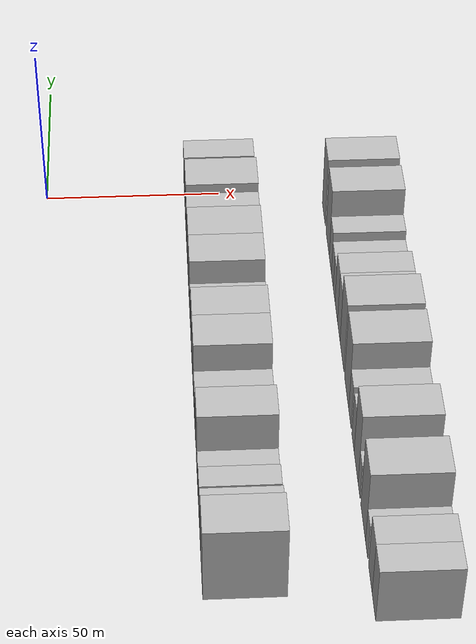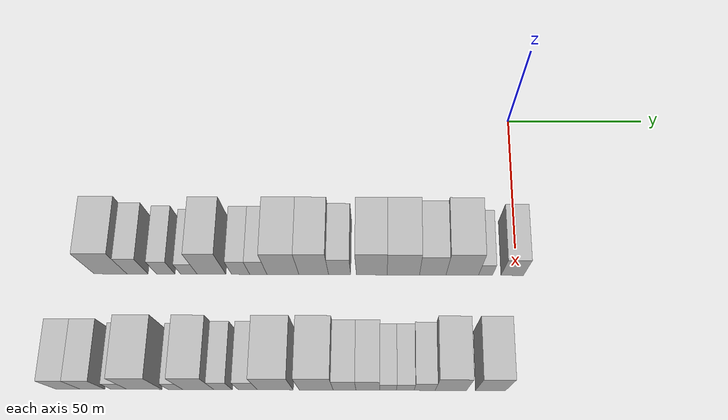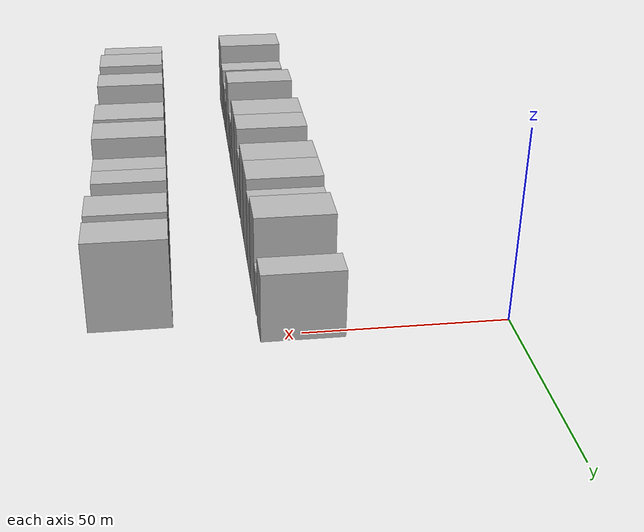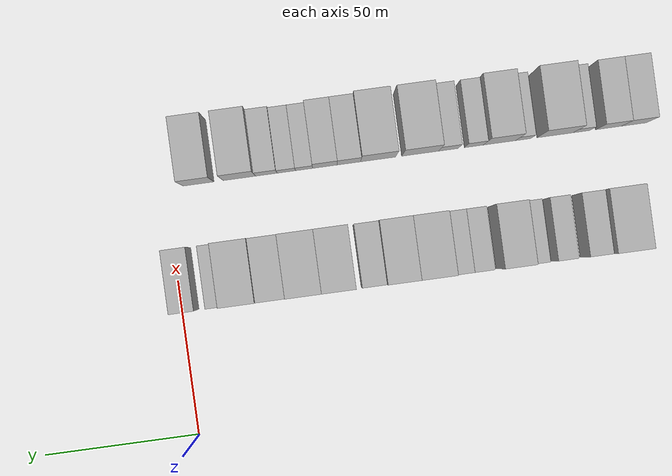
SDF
<sdf version="1.6">
 <world name="default">
  <model name="building_18">
   <static>1</static>
   <pose>50.0000 -142.4200 0 0.000000 0.000000 0.000000</pose>
   <link name="link">
    <pose>0 0 12.00 0 0 0</pose>
    <collision name="collision"><geometry><box><size>20.0000 11.5396 24.0000</size></box></geometry></collision>
    <visual name="visual">
     <cast_shadows>0</cast_shadows>
     <geometry><box><size>20.0000 11.5396 24.0000</size></box></geometry>
     <material>
      <script>
       <uri>model://HANNAS_wall/materials/scripts</uri>
       <uri>model://HANNAS_wall/materials/textures</uri>
       <name>vrc/HANNAS_wall</name>
      </script>
     </material>
    </visual>
   </link>
  </model>
  <model name="building_19">
   <static>1</static>
   <pose>50.0000 -132.9575 0 0.000000 0.000000 0.000000</pose>
   <link name="link">
    <pose>0 0 9.00 0 0 0</pose>
    <collision name="collision"><geometry><box><size>20.0000 7.3854 18.0000</size></box></geometry></collision>
    <visual name="visual">
     <cast_shadows>0</cast_shadows>
     <geometry><box><size>20.0000 7.3854 18.0000</size></box></geometry>
     <material>
      <script>
       <uri>model://HANNAS_wall/materials/scripts</uri>
       <uri>model://HANNAS_wall/materials/textures</uri>
       <name>vrc/HANNAS_wall</name>
      </script>
     </material>
    </visual>
   </link>
  </model>
  <model name="building_20">
   <static>1</static>
   <pose>50.0000 -123.0354 0 0.000000 0.000000 0.000000</pose>
   <link name="link">
    <pose>0 0 7.50 0 0 0</pose>
    <collision name="collision"><geometry><box><size>20.0000 6.4587 15.0000</size></box></geometry></collision>
    <visual name="visual">
     <cast_shadows>0</cast_shadows>
     <geometry><box><size>20.0000 6.4587 15.0000</size></box></geometry>
     <material>
      <script>
       <uri>model://HANNAS_wall/materials/scripts</uri>
       <uri>model://HANNAS_wall/materials/textures</uri>
       <name>vrc/HANNAS_wall</name>
      </script>
     </material>
    </visual>
   </link>
  </model>
  <model name="building_21">
   <static>1</static>
   <pose>50.0000 -114.9029 0 0.000000 0.000000 0.000000</pose>
   <link name="link">
    <pose>0 0 6.00 0 0 0</pose>
    <collision name="collision"><geometry><box><size>20.0000 5.8064 12.0000</size></box></geometry></collision>
    <visual name="visual">
     <cast_shadows>0</cast_shadows>
     <geometry><box><size>20.0000 5.8064 12.0000</size></box></geometry>
     <material>
      <script>
       <uri>model://HANNAS_wall/materials/scripts</uri>
       <uri>model://HANNAS_wall/materials/textures</uri>
       <name>vrc/HANNAS_wall</name>
      </script>
     </material>
    </visual>
   </link>
  </model>
  <model name="building_22">
   <static>1</static>
   <pose>50.0000 -106.9604 0 0.000000 0.000000 0.000000</pose>
   <link name="link">
    <pose>0 0 12.00 0 0 0</pose>
    <collision name="collision"><geometry><box><size>20.0000 10.0785 24.0000</size></box></geometry></collision>
    <visual name="visual">
     <cast_shadows>0</cast_shadows>
     <geometry><box><size>20.0000 10.0785 24.0000</size></box></geometry>
     <material>
      <script>
       <uri>model://HANNAS_wall/materials/scripts</uri>
       <uri>model://HANNAS_wall/materials/textures</uri>
       <name>vrc/HANNAS_wall</name>
      </script>
     </material>
    </visual>
   </link>
  </model>
  <model name="building_23">
   <static>1</static>
   <pose>50.0000 -96.7455 0 0.000000 0.000000 0.000000</pose>
   <link name="link">
    <pose>0 0 7.50 0 0 0</pose>
    <collision name="collision"><geometry><box><size>20.0000 6.3514 15.0000</size></box></geometry></collision>
    <visual name="visual">
     <cast_shadows>0</cast_shadows>
     <geometry><box><size>20.0000 6.3514 15.0000</size></box></geometry>
     <material>
      <script>
       <uri>model://HANNAS_wall/materials/scripts</uri>
       <uri>model://HANNAS_wall/materials/textures</uri>
       <name>vrc/HANNAS_wall</name>
      </script>
     </material>
    </visual>
   </link>
  </model>
  <model name="building_24">
   <static>1</static>
   <pose>50.0000 -90.5376 0 0.000000 0.000000 0.000000</pose>
   <link name="link">
    <pose>0 0 7.50 0 0 0</pose>
    <collision name="collision"><geometry><box><size>20.0000 6.0643 15.0000</size></box></geometry></collision>
    <visual name="visual">
     <cast_shadows>0</cast_shadows>
     <geometry><box><size>20.0000 6.0643 15.0000</size></box></geometry>
     <material>
      <script>
       <uri>model://HANNAS_wall/materials/scripts</uri>
       <uri>model://HANNAS_wall/materials/textures</uri>
       <name>vrc/HANNAS_wall</name>
      </script>
     </material>
    </visual>
   </link>
  </model>
  <model name="building_25">
   <static>1</static>
   <pose>50.0000 -81.9061 0 0.000000 0.000000 0.000000</pose>
   <link name="link">
    <pose>0 0 12.00 0 0 0</pose>
    <collision name="collision"><geometry><box><size>20.0000 11.1988 24.0000</size></box></geometry></collision>
    <visual name="visual">
     <cast_shadows>0</cast_shadows>
     <geometry><box><size>20.0000 11.1988 24.0000</size></box></geometry>
     <material>
      <script>
       <uri>model://HANNAS_wall/materials/scripts</uri>
       <uri>model://HANNAS_wall/materials/textures</uri>
       <name>vrc/HANNAS_wall</name>
      </script>
     </material>
    </visual>
   </link>
  </model>
  <model name="building_26">
   <static>1</static>
   <pose>50.0000 -71.0972 0 0.000000 0.000000 0.000000</pose>
   <link name="link">
    <pose>0 0 12.00 0 0 0</pose>
    <collision name="collision"><geometry><box><size>20.0000 10.4188 24.0000</size></box></geometry></collision>
    <visual name="visual">
     <cast_shadows>0</cast_shadows>
     <geometry><box><size>20.0000 10.4188 24.0000</size></box></geometry>
     <material>
      <script>
       <uri>model://HANNAS_wall/materials/scripts</uri>
       <uri>model://HANNAS_wall/materials/textures</uri>
       <name>vrc/HANNAS_wall</name>
      </script>
     </material>
    </visual>
   </link>
  </model>
  <model name="building_27">
   <static>1</static>
   <pose>50.0000 -62.0028 0 0.000000 0.000000 0.000000</pose>
   <link name="link">
    <pose>0 0 9.00 0 0 0</pose>
    <collision name="collision"><geometry><box><size>20.0000 7.7700 18.0000</size></box></geometry></collision>
    <visual name="visual">
     <cast_shadows>0</cast_shadows>
     <geometry><box><size>20.0000 7.7700 18.0000</size></box></geometry>
     <material>
      <script>
       <uri>model://HANNAS_wall/materials/scripts</uri>
       <uri>model://HANNAS_wall/materials/textures</uri>
       <name>vrc/HANNAS_wall</name>
      </script>
     </material>
    </visual>
   </link>
  </model>
  <model name="building_28">
   <static>1</static>
   <pose>50.0000 -50.7396 0 0.000000 0.000000 0.000000</pose>
   <link name="link">
    <pose>0 0 12.00 0 0 0</pose>
    <collision name="collision"><geometry><box><size>20.0000 10.7563 24.0000</size></box></geometry></collision>
    <visual name="visual">
     <cast_shadows>0</cast_shadows>
     <geometry><box><size>20.0000 10.7563 24.0000</size></box></geometry>
     <material>
      <script>
       <uri>model://HANNAS_wall/materials/scripts</uri>
       <uri>model://HANNAS_wall/materials/textures</uri>
       <name>vrc/HANNAS_wall</name>
      </script>
     </material>
    </visual>
   </link>
  </model>
  <model name="building_29">
   <static>1</static>
   <pose>50.0000 -39.6867 0 0.000000 0.000000 0.000000</pose>
   <link name="link">
    <pose>0 0 12.00 0 0 0</pose>
    <collision name="collision"><geometry><box><size>20.0000 11.3496 24.0000</size></box></geometry></collision>
    <visual name="visual">
     <cast_shadows>0</cast_shadows>
     <geometry><box><size>20.0000 11.3496 24.0000</size></box></geometry>
     <material>
      <script>
       <uri>model://HANNAS_wall/materials/scripts</uri>
       <uri>model://HANNAS_wall/materials/textures</uri>
       <name>vrc/HANNAS_wall</name>
      </script>
     </material>
    </visual>
   </link>
  </model>
  <model name="building_30">
   <static>1</static>
   <pose>50.0000 -29.3589 0 0.000000 0.000000 0.000000</pose>
   <link name="link">
    <pose>0 0 10.50 0 0 0</pose>
    <collision name="collision"><geometry><box><size>20.0000 9.3060 21.0000</size></box></geometry></collision>
    <visual name="visual">
     <cast_shadows>0</cast_shadows>
     <geometry><box><size>20.0000 9.3060 21.0000</size></box></geometry>
     <material>
      <script>
       <uri>model://HANNAS_wall/materials/scripts</uri>
       <uri>model://HANNAS_wall/materials/textures</uri>
       <name>vrc/HANNAS_wall</name>
      </script>
     </material>
    </visual>
   </link>
  </model>
  <model name="building_31">
   <static>1</static>
   <pose>50.0000 -19.0063 0 0.000000 0.000000 0.000000</pose>
   <link name="link">
    <pose>0 0 12.00 0 0 0</pose>
    <collision name="collision"><geometry><box><size>20.0000 11.3990 24.0000</size></box></geometry></collision>
    <visual name="visual">
     <cast_shadows>0</cast_shadows>
     <geometry><box><size>20.0000 11.3990 24.0000</size></box></geometry>
     <material>
      <script>
       <uri>model://HANNAS_wall/materials/scripts</uri>
       <uri>model://HANNAS_wall/materials/textures</uri>
       <name>vrc/HANNAS_wall</name>
      </script>
     </material>
    </visual>
   </link>
  </model>
  <model name="building_32">
   <static>1</static>
   <pose>50.0000 -10.8610 0 0.000000 0.000000 0.000000</pose>
   <link name="link">
    <pose>0 0 6.00 0 0 0</pose>
    <collision name="collision"><geometry><box><size>20.0000 4.8917 12.0000</size></box></geometry></collision>
    <visual name="visual">
     <cast_shadows>0</cast_shadows>
     <geometry><box><size>20.0000 4.8917 12.0000</size></box></geometry>
     <material>
      <script>
       <uri>model://HANNAS_wall/materials/scripts</uri>
       <uri>model://HANNAS_wall/materials/textures</uri>
       <name>vrc/HANNAS_wall</name>
      </script>
     </material>
    </visual>
   </link>
  </model>
  <model name="building_33">
   <static>1</static>
   <pose>50.0000 -1.4541 0 0.000000 0.000000 0.000000</pose>
   <link name="link">
    <pose>0 0 9.00 0 0 0</pose>
    <collision name="collision"><geometry><box><size>20.0000 7.9220 18.0000</size></box></geometry></collision>
    <visual name="visual">
     <cast_shadows>0</cast_shadows>
     <geometry><box><size>20.0000 7.9220 18.0000</size></box></geometry>
     <material>
      <script>
       <uri>model://HANNAS_wall/materials/scripts</uri>
       <uri>model://HANNAS_wall/materials/textures</uri>
       <name>vrc/HANNAS_wall</name>
      </script>
     </material>
    </visual>
   </link>
  </model>
  <model name="building_85">
   <static>1</static>
   <pose>90.0000 -152.1957 0 0.000000 0.000000 0.000000</pose>
   <link name="link">
    <pose>0 0 9.00 0 0 0</pose>
    <collision name="collision"><geometry><box><size>20.0000 8.1596 18.0000</size></box></geometry></collision>
    <visual name="visual">
     <cast_shadows>0</cast_shadows>
     <geometry><box><size>20.0000 8.1596 18.0000</size></box></geometry>
     <material>
      <script>
       <uri>model://HANNAS_wall/materials/scripts</uri>
       <uri>model://HANNAS_wall/materials/textures</uri>
       <name>vrc/HANNAS_wall</name>
      </script>
     </material>
    </visual>
   </link>
  </model>
  <model name="building_86">
   <static>1</static>
   <pose>90.0000 -143.9330 0 0.000000 0.000000 0.000000</pose>
   <link name="link">
    <pose>0 0 9.00 0 0 0</pose>
    <collision name="collision"><geometry><box><size>20.0000 8.3658 18.0000</size></box></geometry></collision>
    <visual name="visual">
     <cast_shadows>0</cast_shadows>
     <geometry><box><size>20.0000 8.3658 18.0000</size></box></geometry>
     <material>
      <script>
       <uri>model://HANNAS_wall/materials/scripts</uri>
       <uri>model://HANNAS_wall/materials/textures</uri>
       <name>vrc/HANNAS_wall</name>
      </script>
     </material>
    </visual>
   </link>
  </model>
  <model name="building_87">
   <static>1</static>
   <pose>90.0000 -135.0626 0 0.000000 0.000000 0.000000</pose>
   <link name="link">
    <pose>0 0 6.00 0 0 0</pose>
    <collision name="collision"><geometry><box><size>20.0000 5.3749 12.0000</size></box></geometry></collision>
    <visual name="visual">
     <cast_shadows>0</cast_shadows>
     <geometry><box><size>20.0000 5.3749 12.0000</size></box></geometry>
     <material>
      <script>
       <uri>model://HANNAS_wall/materials/scripts</uri>
       <uri>model://HANNAS_wall/materials/textures</uri>
       <name>vrc/HANNAS_wall</name>
      </script>
     </material>
    </visual>
   </link>
  </model>
  <model name="building_88">
   <static>1</static>
   <pose>90.0000 -126.5322 0 0.000000 0.000000 0.000000</pose>
   <link name="link">
    <pose>0 0 12.00 0 0 0</pose>
    <collision name="collision"><geometry><box><size>20.0000 11.6860 24.0000</size></box></geometry></collision>
    <visual name="visual">
     <cast_shadows>0</cast_shadows>
     <geometry><box><size>20.0000 11.6860 24.0000</size></box></geometry>
     <material>
      <script>
       <uri>model://HANNAS_wall/materials/scripts</uri>
       <uri>model://HANNAS_wall/materials/textures</uri>
       <name>vrc/HANNAS_wall</name>
      </script>
     </material>
    </visual>
   </link>
  </model>
  <model name="building_89">
   <static>1</static>
   <pose>90.0000 -116.2276 0 0.000000 0.000000 0.000000</pose>
   <link name="link">
    <pose>0 0 6.00 0 0 0</pose>
    <collision name="collision"><geometry><box><size>20.0000 4.9231 12.0000</size></box></geometry></collision>
    <visual name="visual">
     <cast_shadows>0</cast_shadows>
     <geometry><box><size>20.0000 4.9231 12.0000</size></box></geometry>
     <material>
      <script>
       <uri>model://HANNAS_wall/materials/scripts</uri>
       <uri>model://HANNAS_wall/materials/textures</uri>
       <name>vrc/HANNAS_wall</name>
      </script>
     </material>
    </visual>
   </link>
  </model>
  <model name="building_90">
   <static>1</static>
   <pose>90.0000 -108.5277 0 0.000000 0.000000 0.000000</pose>
   <link name="link">
    <pose>0 0 12.00 0 0 0</pose>
    <collision name="collision"><geometry><box><size>20.0000 10.4768 24.0000</size></box></geometry></collision>
    <visual name="visual">
     <cast_shadows>0</cast_shadows>
     <geometry><box><size>20.0000 10.4768 24.0000</size></box></geometry>
     <material>
      <script>
       <uri>model://HANNAS_wall/materials/scripts</uri>
       <uri>model://HANNAS_wall/materials/textures</uri>
       <name>vrc/HANNAS_wall</name>
      </script>
     </material>
    </visual>
   </link>
  </model>
  <model name="building_91">
   <static>1</static>
   <pose>90.0000 -100.1976 0 0.000000 0.000000 0.000000</pose>
   <link name="link">
    <pose>0 0 7.50 0 0 0</pose>
    <collision name="collision"><geometry><box><size>20.0000 6.1833 15.0000</size></box></geometry></collision>
    <visual name="visual">
     <cast_shadows>0</cast_shadows>
     <geometry><box><size>20.0000 6.1833 15.0000</size></box></geometry>
     <material>
      <script>
       <uri>model://HANNAS_wall/materials/scripts</uri>
       <uri>model://HANNAS_wall/materials/textures</uri>
       <name>vrc/HANNAS_wall</name>
      </script>
     </material>
    </visual>
   </link>
  </model>
  <model name="building_92">
   <static>1</static>
   <pose>90.0000 -91.8778 0 0.000000 0.000000 0.000000</pose>
   <link name="link">
    <pose>0 0 7.50 0 0 0</pose>
    <collision name="collision"><geometry><box><size>20.0000 6.4563 15.0000</size></box></geometry></collision>
    <visual name="visual">
     <cast_shadows>0</cast_shadows>
     <geometry><box><size>20.0000 6.4563 15.0000</size></box></geometry>
     <material>
      <script>
       <uri>model://HANNAS_wall/materials/scripts</uri>
       <uri>model://HANNAS_wall/materials/textures</uri>
       <name>vrc/HANNAS_wall</name>
      </script>
     </material>
    </visual>
   </link>
  </model>
  <model name="building_93">
   <static>1</static>
   <pose>90.0000 -82.6861 0 0.000000 0.000000 0.000000</pose>
   <link name="link">
    <pose>0 0 12.00 0 0 0</pose>
    <collision name="collision"><geometry><box><size>20.0000 11.9272 24.0000</size></box></geometry></collision>
    <visual name="visual">
     <cast_shadows>0</cast_shadows>
     <geometry><box><size>20.0000 11.9272 24.0000</size></box></geometry>
     <material>
      <script>
       <uri>model://HANNAS_wall/materials/scripts</uri>
       <uri>model://HANNAS_wall/materials/textures</uri>
       <name>vrc/HANNAS_wall</name>
      </script>
     </material>
    </visual>
   </link>
  </model>
  <model name="building_94">
   <static>1</static>
   <pose>90.0000 -69.0409 0 0.000000 0.000000 0.000000</pose>
   <link name="link">
    <pose>0 0 12.00 0 0 0</pose>
    <collision name="collision"><geometry><box><size>20.0000 11.3632 24.0000</size></box></geometry></collision>
    <visual name="visual">
     <cast_shadows>0</cast_shadows>
     <geometry><box><size>20.0000 11.3632 24.0000</size></box></geometry>
     <material>
      <script>
       <uri>model://HANNAS_wall/materials/scripts</uri>
       <uri>model://HANNAS_wall/materials/textures</uri>
       <name>vrc/HANNAS_wall</name>
      </script>
     </material>
    </visual>
   </link>
  </model>
  <model name="building_95">
   <static>1</static>
   <pose>90.0000 -59.5511 0 0.000000 0.000000 0.000000</pose>
   <link name="link">
    <pose>0 0 9.00 0 0 0</pose>
    <collision name="collision"><geometry><box><size>20.0000 7.6165 18.0000</size></box></geometry></collision>
    <visual name="visual">
     <cast_shadows>0</cast_shadows>
     <geometry><box><size>20.0000 7.6165 18.0000</size></box></geometry>
     <material>
      <script>
       <uri>model://HANNAS_wall/materials/scripts</uri>
       <uri>model://HANNAS_wall/materials/textures</uri>
       <name>vrc/HANNAS_wall</name>
      </script>
     </material>
    </visual>
   </link>
  </model>
  <model name="building_96">
   <static>1</static>
   <pose>90.0000 -51.7771 0 0.000000 0.000000 0.000000</pose>
   <link name="link">
    <pose>0 0 9.00 0 0 0</pose>
    <collision name="collision"><geometry><box><size>20.0000 7.9316 18.0000</size></box></geometry></collision>
    <visual name="visual">
     <cast_shadows>0</cast_shadows>
     <geometry><box><size>20.0000 7.9316 18.0000</size></box></geometry>
     <material>
      <script>
       <uri>model://HANNAS_wall/materials/scripts</uri>
       <uri>model://HANNAS_wall/materials/textures</uri>
       <name>vrc/HANNAS_wall</name>
      </script>
     </material>
    </visual>
   </link>
  </model>
  <model name="building_97">
   <static>1</static>
   <pose>90.0000 -45.0283 0 0.000000 0.000000 0.000000</pose>
   <link name="link">
    <pose>0 0 6.00 0 0 0</pose>
    <collision name="collision"><geometry><box><size>20.0000 5.5660 12.0000</size></box></geometry></collision>
    <visual name="visual">
     <cast_shadows>0</cast_shadows>
     <geometry><box><size>20.0000 5.5660 12.0000</size></box></geometry>
     <material>
      <script>
       <uri>model://HANNAS_wall/materials/scripts</uri>
       <uri>model://HANNAS_wall/materials/textures</uri>
       <name>vrc/HANNAS_wall</name>
      </script>
     </material>
    </visual>
   </link>
  </model>
  <model name="building_98">
   <static>1</static>
   <pose>90.0000 -39.2660 0 0.000000 0.000000 0.000000</pose>
   <link name="link">
    <pose>0 0 6.00 0 0 0</pose>
    <collision name="collision"><geometry><box><size>20.0000 5.9586 12.0000</size></box></geometry></collision>
    <visual name="visual">
     <cast_shadows>0</cast_shadows>
     <geometry><box><size>20.0000 5.9586 12.0000</size></box></geometry>
     <material>
      <script>
       <uri>model://HANNAS_wall/materials/scripts</uri>
       <uri>model://HANNAS_wall/materials/textures</uri>
       <name>vrc/HANNAS_wall</name>
      </script>
     </material>
    </visual>
   </link>
  </model>
  <model name="building_99">
   <static>1</static>
   <pose>90.0000 -32.7699 0 0.000000 0.000000 0.000000</pose>
   <link name="link">
    <pose>0 0 7.50 0 0 0</pose>
    <collision name="collision"><geometry><box><size>20.0000 7.0337 15.0000</size></box></geometry></collision>
    <visual name="visual">
     <cast_shadows>0</cast_shadows>
     <geometry><box><size>20.0000 7.0337 15.0000</size></box></geometry>
     <material>
      <script>
       <uri>model://HANNAS_wall/materials/scripts</uri>
       <uri>model://HANNAS_wall/materials/textures</uri>
       <name>vrc/HANNAS_wall</name>
      </script>
     </material>
    </visual>
   </link>
  </model>
  <model name="building_100">
   <static>1</static>
   <pose>90.0000 -24.0125 0 0.000000 0.000000 0.000000</pose>
   <link name="link">
    <pose>0 0 12.00 0 0 0</pose>
    <collision name="collision"><geometry><box><size>20.0000 10.4810 24.0000</size></box></geometry></collision>
    <visual name="visual">
     <cast_shadows>0</cast_shadows>
     <geometry><box><size>20.0000 10.4810 24.0000</size></box></geometry>
     <material>
      <script>
       <uri>model://HANNAS_wall/materials/scripts</uri>
       <uri>model://HANNAS_wall/materials/textures</uri>
       <name>vrc/HANNAS_wall</name>
      </script>
     </material>
    </visual>
   </link>
  </model>
  <model name="building_101">
   <static>1</static>
   <pose>90.0000 -10.7483 0 0.000000 0.000000 0.000000</pose>
   <link name="link">
    <pose>0 0 12.00 0 0 0</pose>
    <collision name="collision"><geometry><box><size>20.0000 10.0474 24.0000</size></box></geometry></collision>
    <visual name="visual">
     <cast_shadows>0</cast_shadows>
     <geometry><box><size>20.0000 10.0474 24.0000</size></box></geometry>
     <material>
      <script>
       <uri>model://HANNAS_wall/materials/scripts</uri>
       <uri>model://HANNAS_wall/materials/textures</uri>
       <name>vrc/HANNAS_wall</name>
      </script>
     </material>
    </visual>
   </link>
  </model>
 </world>
</sdf>
